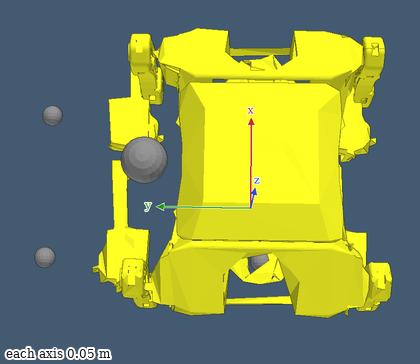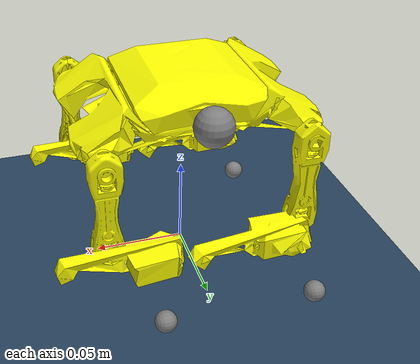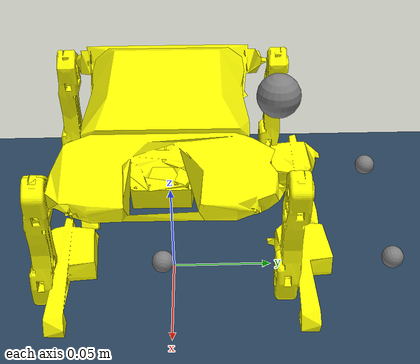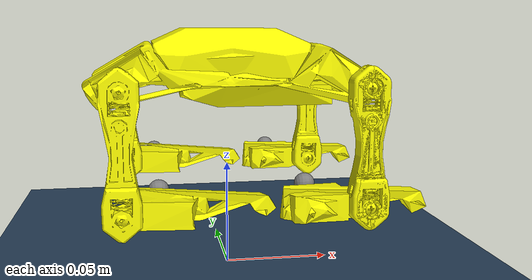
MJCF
<mujoco model="bittle_scene">
  <include file="bittle_body.xml"/>

  <visual>
    <headlight diffuse="0.6 0.6 0.6" ambient="0.3 0.3 0.3" specular="0 0 0"/>
    <global azimuth="120" elevation="-20"/>
  </visual>

  <statistic center="0 0 0.05" extent="0.4"/>

  <asset>
    <texture name="grid" type="2d" builtin="checker" rgb1=".1 .2 .3" rgb2=".2 .3 .4"
             width="300" height="300"/>
    <material name="grid" texture="grid" texrepeat="8 8" reflectance="0.2"/>
  </asset>

  <worldbody>
    <light pos="0 0 1.5" dir="0 0 -1" directional="true"/>
    <geom name="floor" type="plane" size="0 0 0.05" material="grid"
          friction="0.8 0.02 0.01"/>
  </worldbody>

  <!-- 8 servos: command = target joint angle (radians). -->
  <actuator>
    <position name="lb_shoulder" joint="left-back-shoulder-joint"   kp="20" ctrlrange="-1.5708 1.6"     forcerange="-0.55 0.55"/>
    <position name="lb_knee"     joint="left-back-knee-joint"       kp="20" ctrlrange="-1.22173 1.48353" forcerange="-0.55 0.55"/>
    <position name="lf_shoulder" joint="left-front-shoulder-joint"  kp="20" ctrlrange="-1.5708 1.6"     forcerange="-0.55 0.55"/>
    <position name="lf_knee"     joint="left-front-knee-joint"      kp="20" ctrlrange="-1.22173 1.48353" forcerange="-0.55 0.55"/>
    <position name="rb_shoulder" joint="right-back-shoulder-joint"  kp="20" ctrlrange="-1.5708 1.6"     forcerange="-0.55 0.55"/>
    <position name="rb_knee"     joint="right-back-knee-joint"      kp="20" ctrlrange="-1.22173 1.48353" forcerange="-0.55 0.55"/>
    <position name="rf_shoulder" joint="right-front-shoulder-joint" kp="20" ctrlrange="-1.5708 1.6"     forcerange="-0.55 0.55"/>
    <position name="rf_knee"     joint="right-front-knee-joint"     kp="20" ctrlrange="-1.22173 1.48353" forcerange="-0.55 0.55"/>
  </actuator>

  <!-- Sensors matching the observation design in CLAUDE.md §7. -->
  <sensor>
    <framequat   name="orientation"      objtype="site" objname="imu"/>
    <gyro        name="angular_velocity" site="imu"/>
    <framepos    name="torso_pos"        objtype="site" objname="imu"/>
    <velocimeter name="torso_vel"        site="imu"/>

    <jointpos name="lb_shoulder_angle" joint="left-back-shoulder-joint"/>
    <jointpos name="lb_knee_angle"     joint="left-back-knee-joint"/>
    <jointpos name="lf_shoulder_angle" joint="left-front-shoulder-joint"/>
    <jointpos name="lf_knee_angle"     joint="left-front-knee-joint"/>
    <jointpos name="rb_shoulder_angle" joint="right-back-shoulder-joint"/>
    <jointpos name="rb_knee_angle"     joint="right-back-knee-joint"/>
    <jointpos name="rf_shoulder_angle" joint="right-front-shoulder-joint"/>
    <jointpos name="rf_knee_angle"     joint="right-front-knee-joint"/>
  </sensor>

  <keyframe>
    <!-- 7 freejoint values (xyz + quaternion) then 8 leg-joint angles. -->
    <key name="home" qpos="0 0 0.085  1 0 0 0  0.56 0.56 0.56 0.56 0.56 0.56 0.56 0.56"/>
  </keyframe>
</mujoco>

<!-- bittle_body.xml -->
<mujoco model="bittle">
  <compiler angle="radian" meshdir="" />

  <option cone="elliptic" gravity="0 0 -9.81" />

  <default>
    <joint limited="true" damping="0.01" armature="0.01" frictionloss="0.1" />
    <equality solref="0.01 1.1" />
    <default class="visualgeom">
      <geom material="visualgeom" condim="1" contype="1" conaffinity="15" friction="0.9 0.02 0.01" />
    </default>
    <default class="footL">
      <geom type="sphere" size="0.005" pos="-0.049 -0.00175 -0.0825" priority="1" solimp="0.015 1 0.031" condim="6" friction="0.8 0.02 0.01" />
      </default>
    <default class="footR">
      <geom type="sphere" size="0.005" pos="0.049 -0.00175 -0.0825" priority="1" solimp="0.015 1 0.031" condim="6" friction="0.8 0.02 0.01" />
      </default>
  </default>

  <asset>
    <mesh name="base_frame.001" file="assets/base_frame.001.obj" scale="0.1 0.1 0.1"/>
    <mesh name="battery.001" file="assets/battery.001.obj" scale="0.1 0.1 0.1"/>
    <mesh name="cover.001" file="assets/cover.001.obj" scale="0.1 0.1 0.1"/>
    <mesh name="left_knee.002" file="assets/left_knee.002.obj" scale="0.1 0.1 0.1"/>
    <mesh name="shoulder.004" file="assets/shoulder.004.obj" scale="0.1 0.1 0.1"/>
    <mesh name="left_knee.003" file="assets/left_knee.003.obj" scale="0.1 0.1 0.1"/>
    <mesh name="shoulder.007" file="assets/shoulder.007.obj" scale="0.1 0.1 0.1"/>
    <mesh name="right_knee.002" file="assets/right_knee.002.obj" scale="0.1 0.1 0.1"/>
    <mesh name="shoulder.005" file="assets/shoulder.005.obj" scale="0.1 0.1 0.1"/>
    <mesh name="right_knee.003" file="assets/right_knee.003.obj" scale="0.1 0.1 0.1"/>
    <mesh name="shoulder.006" file="assets/shoulder.006.obj" scale="0.1 0.1 0.1"/>
    <material name="visualgeom" rgba="1.0 1.0 0.0 1" />
  </asset>

  <worldbody>
    <body name="root" pos="0 0 0.09239305602569667" quat="1 0 0 0">
      <site name="imu" size="0.001" pos="0 0 0" />
      <site name="head" pos="0 .05 0.01" size="0.01"/>
      <freejoint/>
      <inertial pos="0 -0.002 -0.002" mass="0.165" diaginertia="0.001 0.001 0.001" />
      <geom name="base_frame_c" type="mesh" mesh="base_frame.001" contype="1" conaffinity="15" group="1" class="visualgeom" />
      <geom type="mesh" rgba="1.0 1.0 0.0 1" mesh="base_frame.001" />
      <geom name="battery_c" pos="0.000047 -0.000917 -0.004848" quat="1 0 0 0" type="mesh" mesh="battery.001" contype="1" conaffinity="15" group="1" class="visualgeom" />
      <geom type="mesh" rgba="0.0 0.0 0.0 1" mesh="battery.001" pos="0.000047 -0.000917 -0.004848" quat="1 0 0 0" />
      <geom name="cover_c" pos="0.00014 0 0.01251" quat="1 0 0 0" type="mesh" mesh="cover.001" contype="1" conaffinity="15" group="1" class="visualgeom" />
      <geom type="mesh" rgba="0.0 0.0 0.0 1" mesh="cover.001" pos="0.00014 0 0.01251" quat="1 0 0 0" />
  <body name="left-back-shoulder-link" pos="-0.044596 -0.051923 -0.002102" quat="0.499998 0.5 -0.500002 -0.5">
        <inertial pos="0 -0.024575 0.004372" quat="0.707107 0.707107 0 0" mass="0.006" diaginertia="0.00044 0.00044 2e-05" />
        <joint name="left-back-shoulder-joint" pos="0 0 0" axis="0 0 1" range="-1.5708 1.6" actuatorfrcrange="-1000 1000" />
        <geom name="left_back_shoulder_c" pos="0 -0.024575 0.004372" quat="0.499998 -0.5 0.5 0.500002" type="mesh" mesh="shoulder.004" contype="1" conaffinity="15"  group="1" class="visualgeom" />
        <geom type="mesh" rgba="1.0 1.0 0.0 1" mesh="shoulder.004" pos="0 -0.024575 0.004372" quat="0.499998 -0.5 0.5 0.500002" />
        <body name="left-back-knee-link" pos="0 -0.049172 0">
          <inertial pos="-0.008998 0 -0.014638" quat="0.385725 0.189855 0.608868 0.666671" mass="0.017" diaginertia="0.000836537 0.000627558 0.000415905" />
          <joint name="left-back-knee-joint" pos="0 0 0" axis="0 0 1" range="-1.22173 1.48353" actuatorfrcrange="-1000 1000" />
          <geom name="left_back_knee_c" pos="-0.008998 0 -0.014638" quat="0.499998 -0.5 0.5 0.500002" type="mesh" mesh="left_knee.002" contype="1" conaffinity="15"  group="1" class="visualgeom" />
          <geom type="mesh" rgba="0.0 0.0 0.0 1" mesh="left_knee.002" pos="-0.008998 0 -0.014638" quat="0.499998 -0.5 0.5 0.500002" />
         <geom name="left_back_foot" class="footL" />
         <site name="left_back_foot" pos="-0.049 -0.00175 -0.0825" type="sphere" size="0.005"/>
        </body>
      </body>
      <body name="left-front-shoulder-link" pos="-0.044596 0.052264 -0.002102" quat="0.499998 0.5 -0.500002 -0.5">
        <inertial pos="0 -0.024575 0.004372" quat="0.707107 0.707107 0 0" mass="0.006" diaginertia="0.00044 0.00044 2e-05" />
        <joint name="left-front-shoulder-joint" pos="0 0 0" axis="0 0 1" range="-1.5708 1.6" actuatorfrcrange="-1000 1000" />
        <geom name="left_front_shoulder_c" pos="0 -0.024575 0.004372" quat="0.499998 -0.5 0.5 0.500002" type="mesh" mesh="shoulder.007" contype="1" conaffinity="15"  group="1" class="visualgeom" />
        <geom type="mesh" rgba="1.0 1.0 0.0 1" mesh="shoulder.007" pos="0 -0.024575 0.004372" quat="0.499998 -0.5 0.5 0.500002" />
        <body name="left-front-knee-link" pos="6e-06 -0.049172 0">
          <inertial pos="-0.009232 0 -0.014614" quat="0.648853 -0.0696517 0.415405 0.633701" mass="0.017" diaginertia="0.000703116 0.000604252 0.000572632" />
          <joint name="left-front-knee-joint" pos="0 0 0" axis="0 0 1" range="-1.22173 1.48353" actuatorfrcrange="-1000 1000" />
          <geom name="left_front_knee_c" pos="-0.009232 0 -0.014614" quat="0.499998 -0.5 0.5 0.500002" type="mesh" mesh="left_knee.003" contype="1" conaffinity="15"  group="1" class="visualgeom" />
          <geom type="mesh" rgba="0.0 0.0 0.0 1" mesh="left_knee.003" pos="-0.009232 0 -0.014614" quat="0.499998 -0.5 0.5 0.500002" />
         <geom name="left_front_foot" class="footL"/>
         <site name="left_front_foot" pos="-0.049 -0.00175 -0.0825" type="sphere" size="0.005"/>
        </body>
      </body>
      <body name="right-back-shoulder-link" pos="0.045149 -0.051923 -0.002102" quat="0.499998 -0.5 0.500002 -0.5">
        <inertial pos="0 0.024575 0.00777" quat="0.707107 0.707107 0 0" mass="0.006" diaginertia="0.00044 0.00044 2e-05" />
        <joint name="right-back-shoulder-joint" pos="0 0 0" axis="0 0 -1" range="-1.5708 1.6" actuatorfrcrange="-1000 1000" />
        <geom name="right_back_shoulder_c" pos="0 0.024575 0.00777" quat="0.499998 0.5 -0.5 0.500002" type="mesh" mesh="shoulder.005" contype="1" conaffinity="15"  group="1" class="visualgeom" />
        <geom type="mesh" rgba="1.0 1.0 0.0 1" mesh="shoulder.005" pos="0 0.024575 0.0077" quat="0.499998 0.5 -0.5 0.500002" />
        <body name="right-back-knee-link" pos="0.000015 0.049938 0.003996" quat="1.32679e-06 0 0 1">
          <inertial pos="0.008426 -0.000238 -0.01382" quat="0.64714 0.175903 0.606664 0.42688" mass="0.017" diaginertia="0.000676185 0.000616918 0.000596897" />
          <joint name="right-back-knee-joint" pos="0 0 0" axis="0 0 -1" range="-1.22173 1.48353" actuatorfrcrange="-1000 1000" />
          <geom name="right_back_knee_c" pos="0.008426 -0.000238 -0.01382" quat="0.499998 -0.5 -0.5 -0.500002" type="mesh" mesh="right_knee.002" contype="1" conaffinity="15"  group="1" class="visualgeom" />
          <geom type="mesh" rgba="0.0 0.0 0.0 1" mesh="right_knee.002" pos="0.008426 -0.000238 -0.01382" quat="0.499998 -0.5 -0.5 -0.500002" />
         <geom name="right_back_foot" class="footR" />
         <site name="right_back_foot" pos="0.049 -0.00175 -0.0825" type="sphere" size="0.005"/>
        </body>
      </body>
      <body name="right-front-shoulder-link" pos="0.045149 0.052264 -0.002102" quat="0.499998 -0.5 0.500002 -0.5">
        <inertial pos="0 0.024575 0.00777" quat="0.707107 0.707107 0 0" mass="0.006" diaginertia="0.00044 0.00044 2e-05" />
        <joint name="right-front-shoulder-joint" pos="0 0 0" axis="0 0 -1" range="-1.5708 1.6" actuatorfrcrange="-1000 1000" />
        <geom name="right_front_shoulder_c" pos="0 0.024575 0.00777" quat="0.499998 0.5 -0.5 0.500002" type="mesh" mesh="shoulder.006" contype="1" conaffinity="15"  group="1" class="visualgeom" />
        <geom type="mesh" rgba="1.0 1.0 0.0 1" mesh="shoulder.006" pos="0 0.024575 0.00777" quat="0.499998 0.5 -0.5 0.500002" />
        <body name="right-front-knee-link" pos="6e-06 0.049938 0.003996" quat="1.32679e-06 0 0 1">
          <inertial pos="0.009497 -0.000238 -0.01382" quat="0.64714 0.175903 0.606664 0.42688" mass="0.017" diaginertia="0.000676185 0.000616918 0.000596897" />
          <joint name="right-front-knee-joint" pos="0 0 0" axis="0 0 -1" range="-1.22173 1.48353" actuatorfrcrange="-1000 1000" />
         <geom name="right_front_knee_c" pos="0.009497 -0.000238 -0.01382" quat="0.499998 -0.5 -0.5 -0.500002" type="mesh" mesh="right_knee.003" contype="1" conaffinity="15"  group="1" class="visualgeom" />
          <geom type="mesh" rgba="0.0 0.0 0.0 1" mesh="right_knee.003" pos="0.009497 -0.000238 -0.01382" quat="0.499998 -0.5 -0.5 -0.500002" />
         <geom name="right_front_foot" class="footR"/>
         <site name="right_front_foot" pos="0.049 -0.00175 -0.0825" type="sphere" size="0.005"/>
        </body>
      </body>
    </body>
  </worldbody>
</mujoco>
